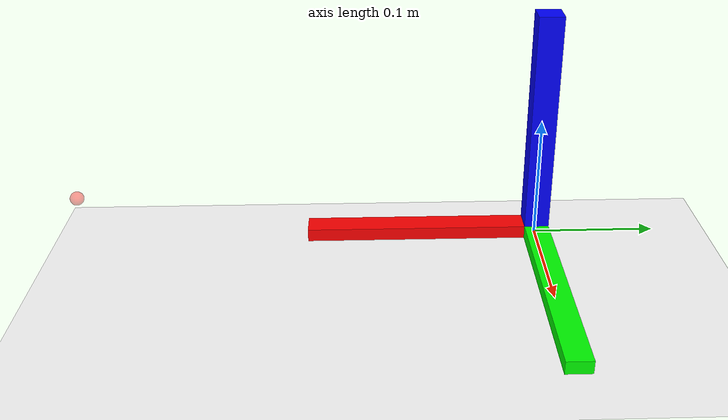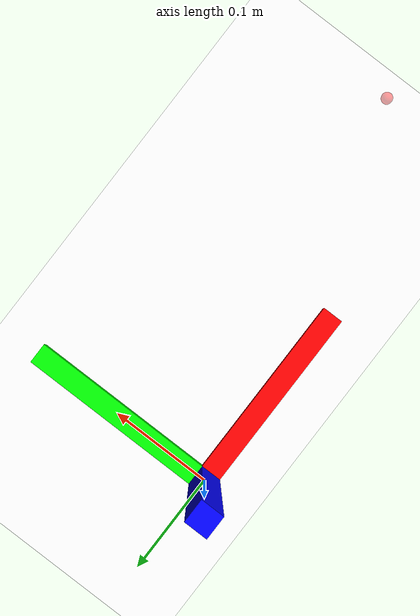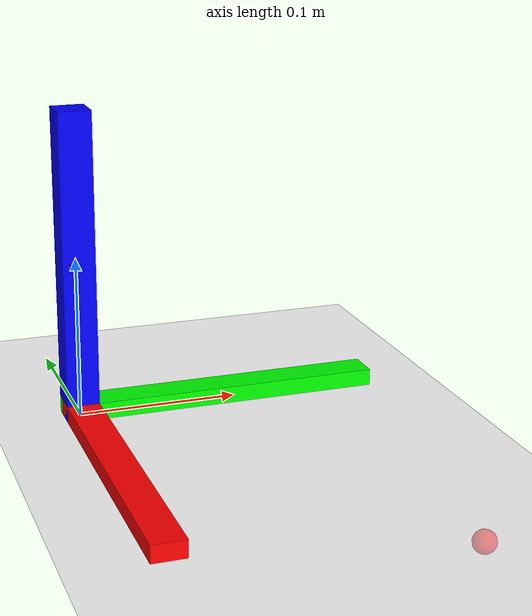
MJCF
<mujoco model="t_block_dual">
  <asset>
    <!-- Checker texture (dark gray / light gray) -->
    <texture name="tex_floor_checker" type="2d" builtin="checker"
             width="512" height="512"
             rgb1="0.90 0.90 0.90" rgb2="0.78 0.78 0.78"/>

    <!-- Material using that texture -->
    <material name="mat_floor_checker"
              texture="tex_floor_checker"
              texrepeat="20 20" texuniform="true"
              reflectance="0.05" shininess="0.2" specular="0.1"
              rgba="1 1 1 1"/>
  </asset>

  <compiler angle="radian"/>
  <option timestep="0.01"/>
  <default>
    <geom friction="0.5 0.005 0.0001" density="1000"/>
  </default>
  <worldbody>
    <light name="scene_light" pos="0 0 1.5" dir="0 0 -1" directional="true"/>
    <geom name="floor" type="plane" size="5 5 0.1" pos="0 0 0" material="mat_floor_checker" rgba="1 1 1 1"/>

    <body name="T_siconos" pos="0 0 0.0" quat="-0.707 0 0 0.707">
      <freejoint name="root_siconos"/>
      <geom name="axis_x" type="box"
            size="0.10 0.01 0.01"
            pos="0.09 0 0"
            rgba="1 0 0 1" contype="0" conaffinity="0"/>

      <!-- Y axis -->
      <geom name="axis_y" type="box"
            size="0.01 0.10 0.01"
            pos="0 0.09 0"
            rgba="0 1 0 1" contype="0" conaffinity="0"/>

      <!-- Z axis -->
      <geom name="axis_z" type="box"
            size="0.01 0.01 0.10"
            pos="0 0 0.09"
            rgba="0 0 1 1" contype="0" conaffinity="0"/>
    </body>

    <body name="T_mujoco" pos="0 0 0.3">
      <freejoint name="root_mujoco"/>
      <geom name="T_stem_m" type="box" size="0.15 0.15 0.15" pos="0 0 -0.05"
            rgba="0.2 0.4 0.8 0.0"/>

    </body>

    <body name="target_mocap" mocap="true" pos="0.08 -0.35 0.08">

      <geom type="sphere" size="0.005" rgba="1 0 0 0.4" contype="0" conaffinity="0"/>
    </body>

  </worldbody>
</mujoco>
